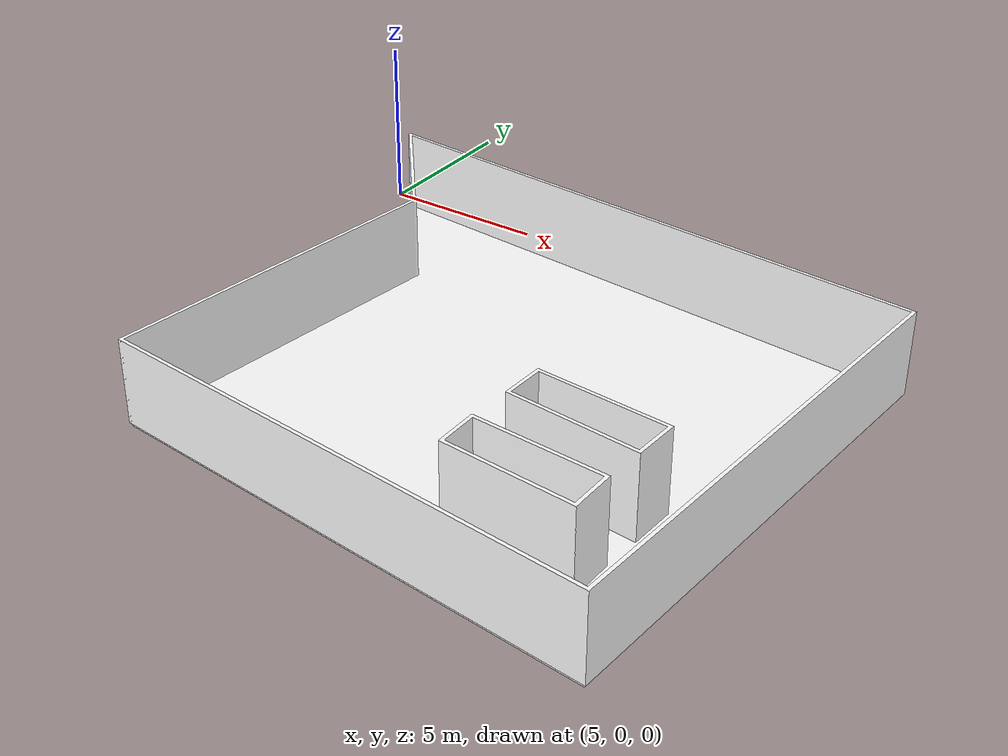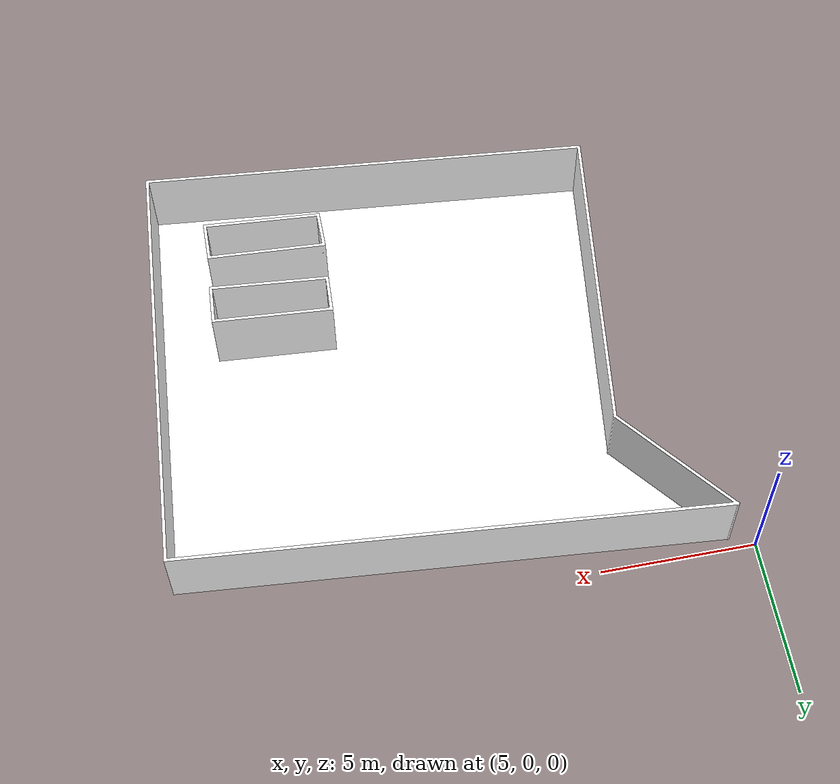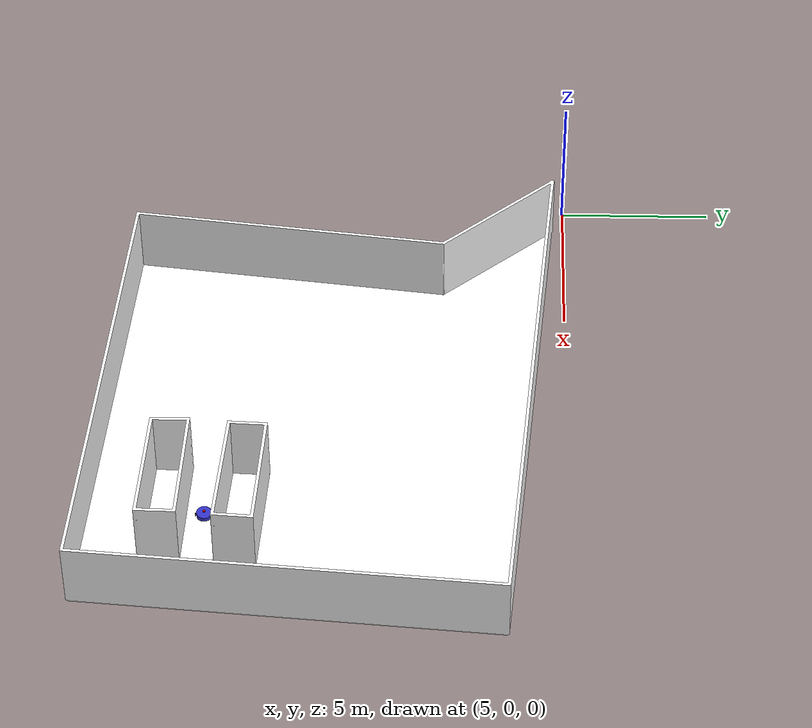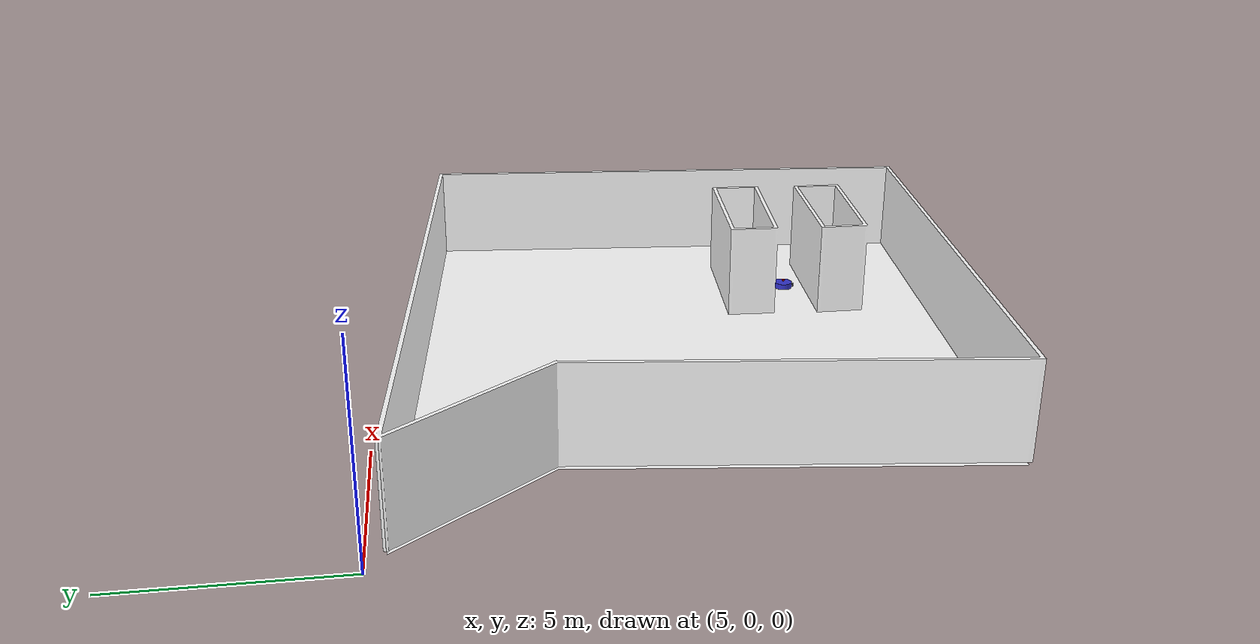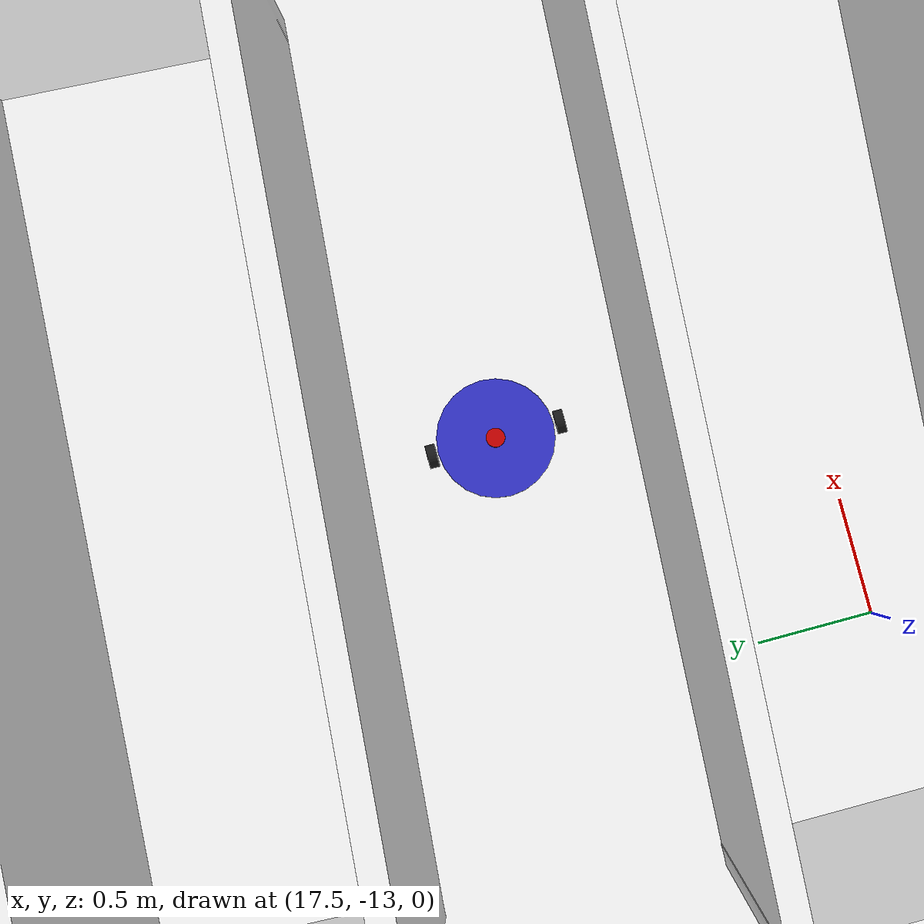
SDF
<sdf version="1.7">
  <world name="sim_world">
    <physics name="10ms" type="ode">
      <max_step_size>0.01</max_step_size>
      <real_time_factor>1.0</real_time_factor>
    </physics>
    <plugin filename="gz-sim-physics-system" name="gz::sim::systems::Physics">
    </plugin>
    <plugin filename="gz-sim-user-commands-system" name="gz::sim::systems::UserCommands">
    </plugin>
    <plugin filename="gz-sim-scene-broadcaster-system" name="gz::sim::systems::SceneBroadcaster">
    </plugin>
    <!-- Sensors system plugin: required for GPU lidar -->
    <plugin filename="gz-sim-sensors-system" name="gz::sim::systems::Sensors">
      <render_engine>ogre2</render_engine>
    </plugin>
    <plugin filename="libdoor.so" name="door">
    </plugin>
    <plugin filename="liblift.so" name="lift">
    </plugin>
    <scene>
      <ambient>1 1 1</ambient>
      <background>0.8 0.8 0.8</background>
      <grid>false</grid>
    </scene>
    <gui fullscreen="0">
      <window>
        <width>1000</width>
        <height>845</height>
        <style material_theme="Light" material_primary="DeepOrange" material_accent="LightBlue" toolbar_color_light="#f3f3f3" toolbar_text_color_light="#111111" toolbar_color_dark="#414141" toolbar_text_color_dark="#f3f3f3" plugin_toolbar_color_light="#bbdefb" plugin_toolbar_text_color_light="#111111" plugin_toolbar_color_dark="#607d8b" plugin_toolbar_text_color_dark="#eeeeee" />
        <menus>
          <drawer default="false">
          </drawer>
        </menus>
      </window>
      <plugin filename="MinimalScene" name="3D View">
        <gz-gui>
          <title>3D View</title>
          <property type="bool" key="showTitleBar">false</property>
          <property type="string" key="state">docked</property>
        </gz-gui>
        <engine>ogre2</engine>
        <scene>scene</scene>
        <ambient_light>0.4 0.4 0.4</ambient_light>
        <background_color>0.8 0.8 0.8</background_color>
        <camera_pose>14.5 -28.1 10 0 0.6 1.57</camera_pose>
      </plugin>
      <plugin filename="EntityContextMenuPlugin" name="Entity context menu">
        <gz-gui>
          <property key="state" type="string">floating</property>
          <property key="width" type="double">5</property>
          <property key="height" type="double">5</property>
          <property key="showTitleBar" type="bool">false</property>
        </gz-gui>
      </plugin>
      <plugin filename="GzSceneManager" name="Scene Manager">
        <gz-gui>
          <property key="resizable" type="bool">false</property>
          <property key="width" type="double">5</property>
          <property key="height" type="double">5</property>
          <property key="state" type="string">floating</property>
          <property key="showTitleBar" type="bool">false</property>
        </gz-gui>
      </plugin>
      <plugin filename="InteractiveViewControl" name="Interactive view control">
        <gz-gui>
          <property key="resizable" type="bool">false</property>
          <property key="width" type="double">5</property>
          <property key="height" type="double">5</property>
          <property key="state" type="string">floating</property>
          <property key="showTitleBar" type="bool">false</property>
        </gz-gui>
      </plugin>
      <plugin filename="CameraTracking" name="Camera Tracking">
        <gz-gui>
          <property key="resizable" type="bool">false</property>
          <property key="width" type="double">5</property>
          <property key="height" type="double">5</property>
          <property key="state" type="string">floating</property>
          <property key="showTitleBar" type="bool">false</property>
        </gz-gui>
      </plugin>
      <plugin filename="MarkerManager" name="Marker manager">
        <gz-gui>
          <property key="resizable" type="bool">false</property>
          <property key="width" type="double">5</property>
          <property key="height" type="double">5</property>
          <property key="state" type="string">floating</property>
          <property key="showTitleBar" type="bool">false</property>
        </gz-gui>
      </plugin>
      <plugin filename="SelectEntities" name="Select Entities">
        <gz-gui>
          <property key="resizable" type="bool">false</property>
          <property key="width" type="double">5</property>
          <property key="height" type="double">5</property>
          <property key="state" type="string">floating</property>
          <property key="showTitleBar" type="bool">false</property>
        </gz-gui>
      </plugin>
      <plugin filename="Spawn" name="Spawn Entities">
        <gz-gui>
          <property key="resizable" type="bool">false</property>
          <property key="width" type="double">5</property>
          <property key="height" type="double">5</property>
          <property key="state" type="string">floating</property>
          <property key="showTitleBar" type="bool">false</property>
        </gz-gui>
      </plugin>
      <plugin filename="VisualizationCapabilities" name="Visualization Capabilities">
        <gz-gui>
          <property key="resizable" type="bool">false</property>
          <property key="width" type="double">5</property>
          <property key="height" type="double">5</property>
          <property key="state" type="string">floating</property>
          <property key="showTitleBar" type="bool">false</property>
        </gz-gui>
      </plugin>
      <plugin filename="WorldControl" name="World control">
        <gz-gui>
          <title>World control</title>
          <property type="bool" key="showTitleBar">false</property>
          <property type="bool" key="resizable">false</property>
          <property type="double" key="height">72</property>
          <property type="double" key="z">1</property>
          <property type="string" key="state">floating</property>
          <anchors target="3D View">
            <line own="left" target="left" />
            <line own="bottom" target="bottom" />
          </anchors>
        </gz-gui>
        <play_pause>true</play_pause>
        <step>true</step>
        <start_paused>false</start_paused>
        <use_event>true</use_event>
      </plugin>
      <plugin filename="WorldStats" name="World stats">
        <gz-gui>
          <title>World stats</title>
          <property type="bool" key="showTitleBar">false</property>
          <property type="bool" key="resizable">false</property>
          <property type="double" key="height">110</property>
          <property type="double" key="width">290</property>
          <property type="double" key="z">1</property>
          <property type="string" key="state">floating</property>
          <anchors target="3D View">
            <line own="right" target="right" />
            <line own="bottom" target="bottom" />
          </anchors>
        </gz-gui>
        <sim_time>true</sim_time>
        <real_time>true</real_time>
        <real_time_factor>true</real_time_factor>
        <iterations>true</iterations>
      </plugin>
      <plugin filename="EntityTree" name="Entity tree">
        <gz-gui>
          <property type="bool" key="showTitleBar">false</property>
          <property type="string" key="state">docked</property>
        </gz-gui>
      </plugin>
    </gui>
    <light type="directional" name="sun">
      <cast_shadows>true</cast_shadows>
      <pose>0 0 10 0 0 0</pose>
      <diffuse>1 1 1 1</diffuse>
      <specular>0.2 0.2 0.2 1</specular>
      <attenuation>
        <range>1000</range>
        <constant>0.09</constant>
        <linear>0.001</linear>
        <quadratic>0.001</quadratic>
      </attenuation>
      <direction>-0.5 0.1 -0.9</direction>
    </light>

    <model name="ground_plane">
      <static>true</static>
      <link name="link">
        <collision name="collision">
          <geometry>
            <plane>
              <normal>0 0 1</normal>
              <size>100 100</size>
            </plane>
          </geometry>
          <surface>
            <friction>
              <ode>
                <mu>100</mu>
                <mu2>100</mu2>
              </ode>
            </friction>
          </surface>
        </collision>
      </link>
    </model>

    <!-- Warehouse building model -->
    <include>
      <name>yondu_warehouse_yondu</name>
      <uri>model://yondu_warehouse_yondu</uri>
      <pose>0 0 0.0 0 0 0</pose>
    </include>

    <!-- Diff-drive sim_robot. Absolute path so Gazebo does not pick up
         another model of the same name from an old resource path. -->
    <include>
      <name>sim_robot</name>
      <uri>file:///home/yondu/yondu_fleet_ws/src/r1_sim/models/sim_robot/model.sdf</uri>
      <pose>18.632 -11.654 0.01 0 0 0</pose>
      <!-- PosePublisher and OdometryPublisher live in sim_robot/model.sdf.
           A second copy here would publish another odom -> base_link. -->
    </include>

  </world>
</sdf>

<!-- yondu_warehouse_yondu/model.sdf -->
<sdf version="1.7">
  <model name="yondu_warehouse_yondu">
    <static>true</static>
    <link name="floor_1">
      <visual name="visual">
        <geometry>
          <mesh>
            <uri>model://yondu_warehouse_yondu/meshes/floor_1.obj</uri>
          </mesh>
        </geometry>
        <material>
          <diffuse>1.0 1.0 1.0</diffuse>
          <specular>0.1 0.1 0.1</specular>
          <pbr>
            <metal>
              <metalness>0.0</metalness>
              <albedo_map>model://yondu_warehouse_yondu/meshes/blue_linoleum.png</albedo_map>
            </metal>
          </pbr>
          <script>
            <uri>model://yondu_warehouse_yondu/meshes/</uri>
            <name>floor_1_Diffuse</name>
          </script>
        </material>
      </visual>
      <collision name="collision">
        <geometry>
          <mesh>
            <uri>model://yondu_warehouse_yondu/meshes/floor_1.obj</uri>
          </mesh>
        </geometry>
        <surface>
          <contact>
            <collide_bitmask>0x01</collide_bitmask>
          </contact>
        </surface>
      </collision>
    </link>
    <link name="wall_1">
      <visual name="wall_1">
        <geometry>
          <mesh>
            <uri>model://yondu_warehouse_yondu/meshes/wall_1.obj</uri>
          </mesh>
        </geometry>
        <transparency>0.0</transparency>
        <material>
          <diffuse>1.0 1.0 1.0</diffuse>
          <specular>0.1 0.1 0.1</specular>
          <pbr>
            <metal>
              <metalness>0.0</metalness>
              <albedo_map>model://yondu_warehouse_yondu/meshes/default.png</albedo_map>
            </metal>
          </pbr>
          <script>
            <uri>model://yondu_warehouse_yondu/meshes/</uri>
            <name>wall_1_Diffuse</name>
          </script>
        </material>
      </visual>
      <collision name="collision">
        <geometry>
          <mesh>
            <uri>model://yondu_warehouse_yondu/meshes/wall_1.obj</uri>
          </mesh>
        </geometry>
        <surface>
          <contact>
            <collide_bitmask>0x01</collide_bitmask>
          </contact>
        </surface>
      </collision>
      <pose>5.744842791026957 -15.83881460376728 0 0 0 0</pose>
    </link>
  </model>
</sdf>

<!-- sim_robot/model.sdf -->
<sdf version="1.9">
  <model name="sim_robot">
    <static>false</static>

    <!-- ==================== BASE LINK ==================== -->
    <link name="base_footprint">
      <pose>0 0 0 0 0 0</pose>
    </link>

    <link name="base_link">
      <pose>0 0 0.08 0 0 0</pose>
      <inertial>
        <mass>20.0</mass>
        <inertia>
          <ixx>0.26</ixx><ixy>0</ixy><ixz>0</ixz>
          <iyy>0.26</iyy><iyz>0</iyz>
          <izz>0.20</izz>
        </inertia>
      </inertial>
      <collision name="base_collision">
        <geometry>
          <cylinder>
            <radius>0.25</radius>
            <length>0.10</length>
          </cylinder>
        </geometry>
      </collision>
      <visual name="base_visual">
        <geometry>
          <cylinder>
            <radius>0.25</radius>
            <length>0.16</length>
          </cylinder>
        </geometry>
        <material>
          <ambient>0.2 0.2 0.8 1</ambient>
          <diffuse>0.2 0.2 0.8 1</diffuse>
        </material>
      </visual>
    </link>

    <joint name="base_footprint_joint" type="fixed">
      <parent>base_footprint</parent>
      <child>base_link</child>
    </joint>

    <!-- ==================== LEFT WHEEL ==================== -->
    <link name="left_wheel">
      <pose>0 0.28 0.05 -1.5707963 0 0</pose>
      <inertial>
        <mass>1.0</mass>
        <inertia>
          <ixx>0.0013</ixx><ixy>0</ixy><ixz>0</ixz>
          <iyy>0.0013</iyy><iyz>0</iyz>
          <izz>0.00125</izz>
        </inertia>
      </inertial>
      <collision name="left_wheel_collision">
        <geometry>
          <cylinder>
            <radius>0.05</radius>
            <length>0.04</length>
          </cylinder>
        </geometry>
        <surface>
          <friction>
            <ode>
              <mu>1.0</mu>
              <mu2>1.0</mu2>
            </ode>
          </friction>
        </surface>
      </collision>
      <visual name="left_wheel_visual">
        <geometry>
          <cylinder>
            <radius>0.05</radius>
            <length>0.04</length>
          </cylinder>
        </geometry>
        <material>
          <ambient>0.1 0.1 0.1 1</ambient>
          <diffuse>0.1 0.1 0.1 1</diffuse>
        </material>
      </visual>
    </link>

    <joint name="left_wheel_joint" type="revolute">
      <parent>base_link</parent>
      <child>left_wheel</child>
      <axis>
        <xyz>0 0 1</xyz>
        <limit>
          <lower>-1e16</lower>
          <upper>1e16</upper>
          <!-- Explicit max motor torque so DART's velocity servo can
               apply real force through the wheel-ground contact. -->
          <effort>20.0</effort>
          <velocity>20.0</velocity>
        </limit>
        <dynamics>
          <friction>0.0</friction>
          <damping>0.0</damping>
        </dynamics>
      </axis>
    </joint>

    <!-- ==================== RIGHT WHEEL ==================== -->
    <link name="right_wheel">
      <pose>0 -0.28 0.05 -1.5707963 0 0</pose>
      <inertial>
        <mass>1.0</mass>
        <inertia>
          <ixx>0.0013</ixx><ixy>0</ixy><ixz>0</ixz>
          <iyy>0.0013</iyy><iyz>0</iyz>
          <izz>0.00125</izz>
        </inertia>
      </inertial>
      <collision name="right_wheel_collision">
        <geometry>
          <cylinder>
            <radius>0.05</radius>
            <length>0.04</length>
          </cylinder>
        </geometry>
        <surface>
          <friction>
            <ode>
              <mu>1.0</mu>
              <mu2>1.0</mu2>
            </ode>
          </friction>
        </surface>
      </collision>
      <visual name="right_wheel_visual">
        <geometry>
          <cylinder>
            <radius>0.05</radius>
            <length>0.04</length>
          </cylinder>
        </geometry>
        <material>
          <ambient>0.1 0.1 0.1 1</ambient>
          <diffuse>0.1 0.1 0.1 1</diffuse>
        </material>
      </visual>
    </link>

    <joint name="right_wheel_joint" type="revolute">
      <parent>base_link</parent>
      <child>right_wheel</child>
      <axis>
        <xyz>0 0 1</xyz>
        <limit>
          <lower>-1e16</lower>
          <upper>1e16</upper>
          <effort>20.0</effort>
          <velocity>20.0</velocity>
        </limit>
        <dynamics>
          <friction>0.0</friction>
          <damping>0.0</damping>
        </dynamics>
      </axis>
    </joint>

    <!-- ==================== FRONT CASTER ==================== -->
    <link name="caster">
      <pose>0.18 0 0.025 0 0 0</pose>
      <inertial>
        <mass>0.5</mass>
        <inertia>
          <ixx>0.00016</ixx><ixy>0</ixy><ixz>0</ixz>
          <iyy>0.00016</iyy><iyz>0</iyz>
          <izz>0.00016</izz>
        </inertia>
      </inertial>
      <collision name="caster_collision">
        <geometry>
          <sphere>
            <radius>0.025</radius>
          </sphere>
        </geometry>
        <surface>
          <friction>
            <ode>
              <mu>0.0</mu>
              <mu2>0.0</mu2>
            </ode>
          </friction>
        </surface>
      </collision>
      <visual name="caster_visual">
        <geometry>
          <sphere>
            <radius>0.025</radius>
          </sphere>
        </geometry>
        <material>
          <ambient>0.3 0.3 0.3 1</ambient>
          <diffuse>0.3 0.3 0.3 1</diffuse>
        </material>
      </visual>
    </link>

    <joint name="caster_joint" type="fixed">
      <parent>base_link</parent>
      <child>caster</child>
    </joint>

    <!-- ==================== REAR CASTER ==================== -->
    <link name="rear_caster">
      <pose>-0.18 0 0.025 0 0 0</pose>
      <inertial>
        <mass>0.5</mass>
        <inertia>
          <ixx>0.00016</ixx><ixy>0</ixy><ixz>0</ixz>
          <iyy>0.00016</iyy><iyz>0</iyz>
          <izz>0.00016</izz>
        </inertia>
      </inertial>
      <collision name="rear_caster_collision">
        <geometry>
          <sphere>
            <radius>0.025</radius>
          </sphere>
        </geometry>
        <surface>
          <friction>
            <ode>
              <mu>0.0</mu>
              <mu2>0.0</mu2>
            </ode>
          </friction>
        </surface>
      </collision>
      <visual name="rear_caster_visual">
        <geometry>
          <sphere>
            <radius>0.025</radius>
          </sphere>
        </geometry>
        <material>
          <ambient>0.3 0.3 0.3 1</ambient>
          <diffuse>0.3 0.3 0.3 1</diffuse>
        </material>
      </visual>
    </link>

    <joint name="rear_caster_joint" type="fixed">
      <parent>base_link</parent>
      <child>rear_caster</child>
    </joint>

    <!-- ==================== LIDAR ==================== -->
    <link name="lidar_link">
      <pose>0 0 0.22 0 0 0</pose>
      <inertial>
        <mass>0.2</mass>
        <inertia>
          <ixx>0.0001</ixx><ixy>0</ixy><ixz>0</ixz>
          <iyy>0.0001</iyy><iyz>0</iyz>
          <izz>0.0001</izz>
        </inertia>
      </inertial>
      <collision name="lidar_collision">
        <geometry>
          <cylinder>
            <radius>0.04</radius>
            <length>0.04</length>
          </cylinder>
        </geometry>
      </collision>
      <visual name="lidar_visual">
        <geometry>
          <cylinder>
            <radius>0.04</radius>
            <length>0.04</length>
          </cylinder>
        </geometry>
        <material>
          <ambient>0.8 0.0 0.0 1</ambient>
          <diffuse>0.8 0.0 0.0 1</diffuse>
        </material>
      </visual>
      <sensor name="gpu_lidar" type="gpu_lidar">
        <always_on>true</always_on>
        <update_rate>10</update_rate>
        <topic>scan</topic>
        <lidar>
          <scan>
            <horizontal>
              <samples>360</samples>
              <resolution>1</resolution>
              <min_angle>-3.14159265</min_angle>
              <max_angle>3.14159265</max_angle>
            </horizontal>
            <vertical>
              <samples>1</samples>
              <resolution>1</resolution>
              <min_angle>0</min_angle>
              <max_angle>0</max_angle>
            </vertical>
          </scan>
          <range>
            <min>0.12</min>
            <max>25.0</max>
            <resolution>0.01</resolution>
          </range>
          <noise>
            <type>gaussian</type>
            <mean>0</mean>
            <stddev>0.005</stddev>
          </noise>
        </lidar>
        <visualize>false</visualize>
      </sensor>
    </link>

    <joint name="lidar_joint" type="fixed">
      <parent>base_link</parent>
      <child>lidar_link</child>
    </joint>

    <!-- ==================== PLUGINS ==================== -->

    <!-- Diff-Drive Controller -->
    <plugin
      filename="gz-sim-diff-drive-system"
      name="gz::sim::systems::DiffDrive">
      <left_joint>left_wheel_joint</left_joint>
      <right_joint>right_wheel_joint</right_joint>
      <wheel_separation>0.56</wheel_separation>
      <wheel_radius>0.05</wheel_radius>
      <max_linear_acceleration>0.5</max_linear_acceleration>
      <max_angular_acceleration>1.5</max_angular_acceleration>
      <!-- Wheels only. OdometryPublisher below supplies odom and TF from
           the simulated pose, so wheel slip cannot drag the lidar scan. -->
      <odom_publish_frequency>0</odom_publish_frequency>
      <topic>cmd_vel</topic>
      <odom_topic>/model/sim_robot/wheel_odometry</odom_topic>
      <tf_topic>/model/sim_robot/wheel_tf</tf_topic>
      <frame_id>odom</frame_id>
      <child_frame_id>base_link</child_frame_id>
    </plugin>

    <!-- Same pair as ros_gz_project_template diff_drive.sdf. PosePublisher
         emits link poses. OdometryPublisher emits odom -> base_link from
         worldPose(), not from wheel joints. -->
    <plugin
      filename="gz-sim-pose-publisher-system"
      name="gz::sim::systems::PosePublisher">
      <publish_link_pose>true</publish_link_pose>
      <use_pose_vector_msg>true</use_pose_vector_msg>
      <static_publisher>true</static_publisher>
      <static_update_frequency>1</static_update_frequency>
      <topic>/model/sim_robot/pose</topic>
    </plugin>

    <plugin
      filename="gz-sim-odometry-publisher-system"
      name="gz::sim::systems::OdometryPublisher">
      <odom_frame>odom</odom_frame>
      <robot_base_frame>base_link</robot_base_frame>
      <dimensions>2</dimensions>
      <odom_publish_frequency>50</odom_publish_frequency>
      <odom_topic>/model/sim_robot/odometry</odom_topic>
      <tf_topic>/model/sim_robot/tf</tf_topic>
    </plugin>

    <!-- Joint State Publisher -->
    <plugin
      filename="gz-sim-joint-state-publisher-system"
      name="gz::sim::systems::JointStatePublisher">
      <joint_name>left_wheel_joint</joint_name>
      <joint_name>right_wheel_joint</joint_name>
    </plugin>

  </model>
</sdf>
